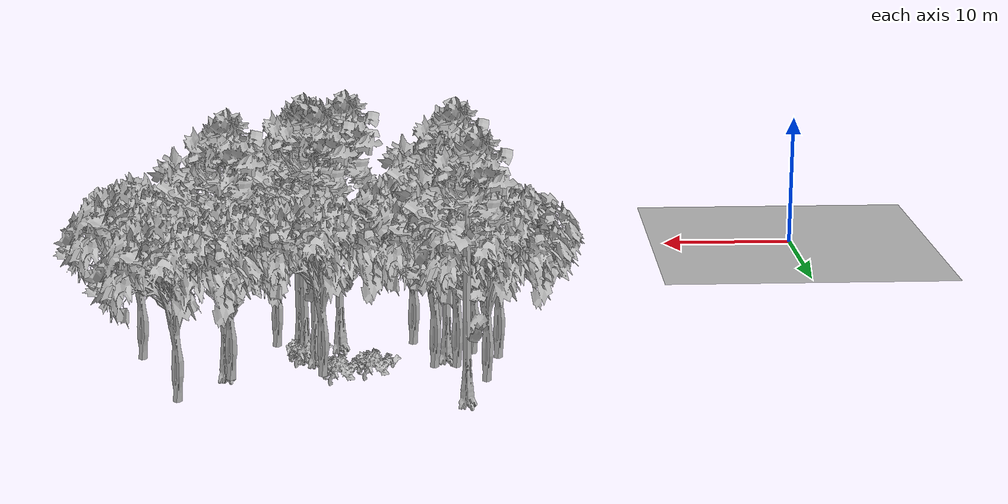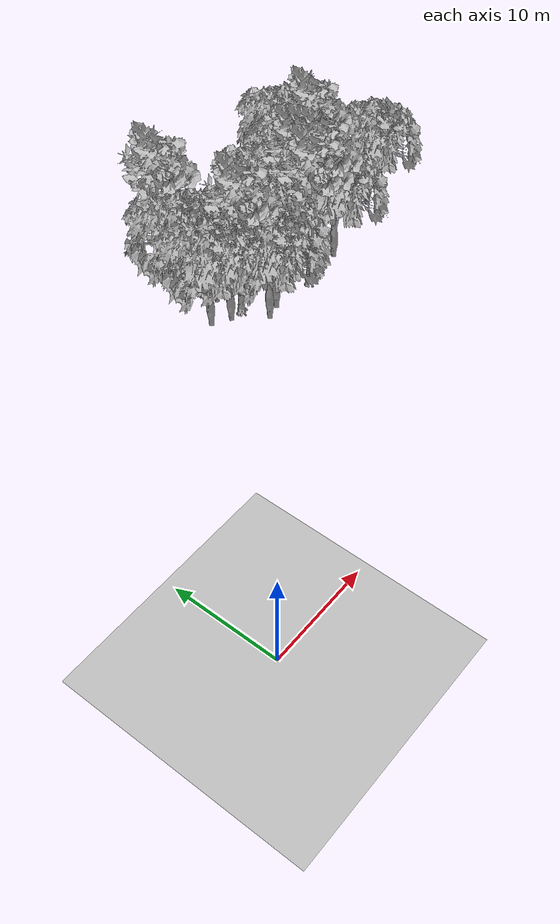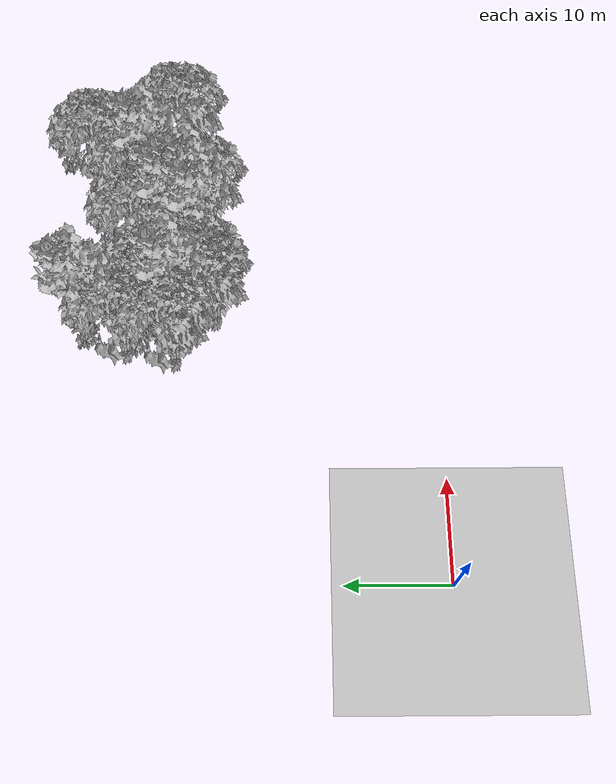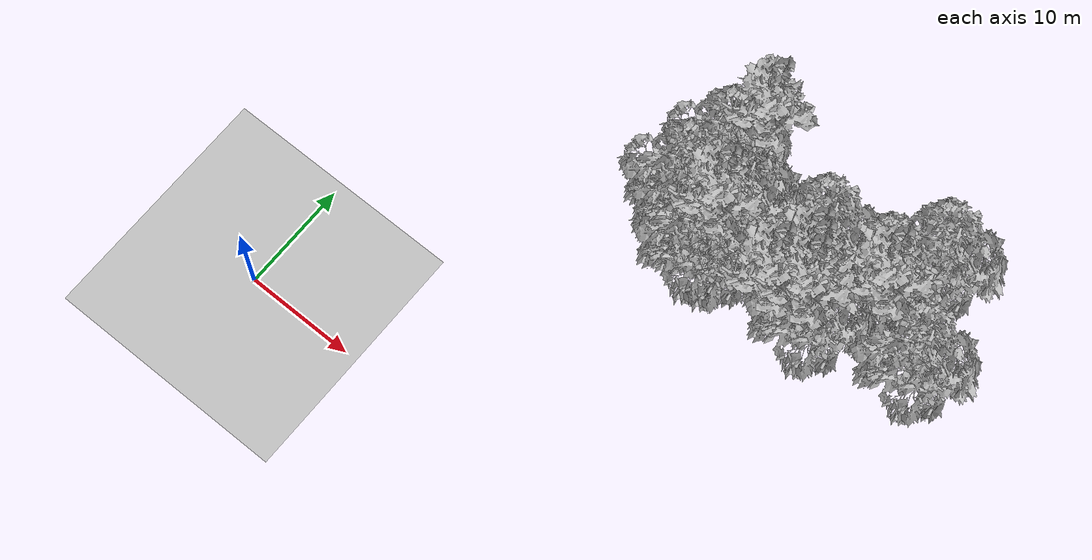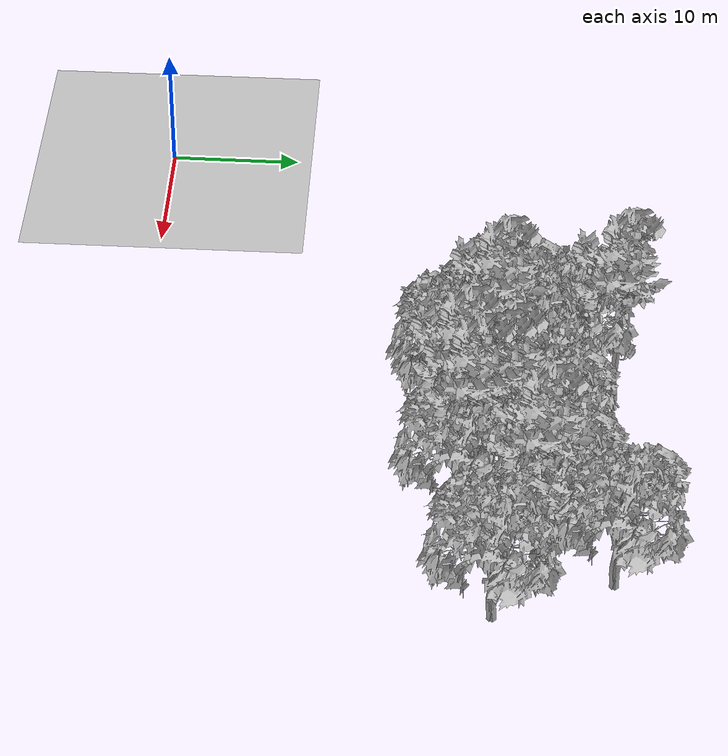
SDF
<sdf version="1.7">
 <world name="default">
  <model name="ground_plane">
   <static>1</static>
   <link name="link">
    <collision name="collision">
     <geometry><plane><normal>0 0 1</normal><size>100 100</size></plane></geometry>
     <surface><contact><ode><min_depth>0.01</min_depth><max_vel>0</max_vel></ode></contact></surface>
    </collision>
    <visual name="grass">
     <cast_shadows>0</cast_shadows>
     <geometry>
      <mesh>
       <scale>0.41000000000000003 0.41000000000000003 0.1</scale>
       <uri>file://grass_plane/meshes/grass_plane.dae</uri>
      </mesh>
     </geometry>
    </visual>
   </link>
  </model>
  <model name="Tree 15">
   <static>1</static>
   <pose>34.30280642389937 23.57383132441612 0 1.57079 -0 0</pose>
   <link name="link">
    <collision name="collision">
     <geometry><mesh><scale>5 5 5</scale><uri>model://tree_9/meshes/tree_9.obj</uri></mesh></geometry>
    </collision>
    <visual name="visual">
     <geometry><mesh><scale>5 5 5</scale><uri>model://tree_9/meshes/tree_9.obj</uri></mesh></geometry>
    </visual>
   </link>
  </model>
  <model name="Tree 87">
   <static>1</static>
   <pose>27.165873374458528 26.056325228191795 0 1.57079 -0 0</pose>
   <link name="link">
    <collision name="collision">
     <geometry><mesh><scale>5 5 5</scale><uri>model://tree_9/meshes/tree_9.obj</uri></mesh></geometry>
    </collision>
    <visual name="visual">
     <geometry><mesh><scale>5 5 5</scale><uri>model://tree_9/meshes/tree_9.obj</uri></mesh></geometry>
    </visual>
   </link>
  </model>
  <model name="Tree 110">
   <static>1</static>
   <pose>36.501326711776244 25.730783659136492 0 1.57079 -0 0</pose>
   <link name="link">
    <collision name="collision">
     <geometry><mesh><scale>5 5 5</scale><uri>model://tree_9/meshes/tree_9.obj</uri></mesh></geometry>
    </collision>
    <visual name="visual">
     <geometry><mesh><scale>5 5 5</scale><uri>model://tree_9/meshes/tree_9.obj</uri></mesh></geometry>
    </visual>
   </link>
  </model>
  <model name="Tree 128">
   <static>1</static>
   <pose>24.50244240428944 31.31182161836395 0 1.57079 -0 0</pose>
   <link name="link">
    <collision name="collision">
     <geometry><mesh><scale>5 5 5</scale><uri>model://tree_2/meshes/tree_2.obj</uri></mesh></geometry>
    </collision>
    <visual name="visual">
     <geometry><mesh><scale>5 5 5</scale><uri>model://tree_2/meshes/tree_2.obj</uri></mesh></geometry>
    </visual>
   </link>
  </model>
  <model name="Tree 131">
   <static>1</static>
   <pose>46.99511599348739 26.019942693859576 0 1.57079 -0 0</pose>
   <link name="link">
    <collision name="collision">
     <geometry><mesh><scale>5 5 5</scale><uri>model://tree_2/meshes/tree_2.obj</uri></mesh></geometry>
    </collision>
    <visual name="visual">
     <geometry><mesh><scale>5 5 5</scale><uri>model://tree_2/meshes/tree_2.obj</uri></mesh></geometry>
    </visual>
   </link>
  </model>
  <model name="Tree 145">
   <static>1</static>
   <pose>40.81949024441167 30.302701460930763 0 1.57079 -0 0</pose>
   <link name="link">
    <collision name="collision">
     <geometry><mesh><scale>5 5 5</scale><uri>model://tree_2/meshes/tree_2.obj</uri></mesh></geometry>
    </collision>
    <visual name="visual">
     <geometry><mesh><scale>5 5 5</scale><uri>model://tree_2/meshes/tree_2.obj</uri></mesh></geometry>
    </visual>
   </link>
  </model>
  <model name="Tree 175">
   <static>1</static>
   <pose>41.39428471906977 29.024817073817715 0 1.57079 -0 0</pose>
   <link name="link">
    <collision name="collision">
     <geometry><mesh><scale>5 5 5</scale><uri>model://tree_9/meshes/tree_9.obj</uri></mesh></geometry>
    </collision>
    <visual name="visual">
     <geometry><mesh><scale>5 5 5</scale><uri>model://tree_9/meshes/tree_9.obj</uri></mesh></geometry>
    </visual>
   </link>
  </model>
  <model name="Tree 183">
   <static>1</static>
   <pose>25.327784345631727 25.826295363840984 0 1.57079 -0 0</pose>
   <link name="link">
    <collision name="collision">
     <geometry><mesh><scale>5 5 5</scale><uri>model://tree_2/meshes/tree_2.obj</uri></mesh></geometry>
    </collision>
    <visual name="visual">
     <geometry><mesh><scale>5 5 5</scale><uri>model://tree_2/meshes/tree_2.obj</uri></mesh></geometry>
    </visual>
   </link>
  </model>
  <model name="Tree 230">
   <static>1</static>
   <pose>27.8329646092875 28.515452601499774 0 1.57079 -0 0</pose>
   <link name="link">
    <collision name="collision">
     <geometry><mesh><scale>5 5 5</scale><uri>model://tree_2/meshes/tree_2.obj</uri></mesh></geometry>
    </collision>
    <visual name="visual">
     <geometry><mesh><scale>5 5 5</scale><uri>model://tree_2/meshes/tree_2.obj</uri></mesh></geometry>
    </visual>
   </link>
  </model>
  <model name="Tree 263">
   <static>1</static>
   <pose>26.395656382741592 28.512815226516736 0 1.57079 -0 0</pose>
   <link name="link">
    <collision name="collision">
     <geometry><mesh><scale>5 5 5</scale><uri>model://tree_2/meshes/tree_2.obj</uri></mesh></geometry>
    </collision>
    <visual name="visual">
     <geometry><mesh><scale>5 5 5</scale><uri>model://tree_2/meshes/tree_2.obj</uri></mesh></geometry>
    </visual>
   </link>
  </model>
  <model name="Tree 267">
   <static>1</static>
   <pose>38.381776165803345 23.83738080337804 0 1.57079 -0 0</pose>
   <link name="link">
    <collision name="collision">
     <geometry><mesh><scale>5 5 5</scale><uri>model://tree_2/meshes/tree_2.obj</uri></mesh></geometry>
    </collision>
    <visual name="visual">
     <geometry><mesh><scale>5 5 5</scale><uri>model://tree_2/meshes/tree_2.obj</uri></mesh></geometry>
    </visual>
   </link>
  </model>
  <model name="Tree 274">
   <static>1</static>
   <pose>43.71598568960326 34.226964899742555 0 1.57079 -0 0</pose>
   <link name="link">
    <collision name="collision">
     <geometry><mesh><scale>5 5 5</scale><uri>model://tree_2/meshes/tree_2.obj</uri></mesh></geometry>
    </collision>
    <visual name="visual">
     <geometry><mesh><scale>5 5 5</scale><uri>model://tree_2/meshes/tree_2.obj</uri></mesh></geometry>
    </visual>
   </link>
  </model>
  <model name="Tree 323">
   <static>1</static>
   <pose>29.27998951058906 23.664999591345875 0 1.57079 -0 0</pose>
   <link name="link">
    <collision name="collision">
     <geometry><mesh><scale>5 5 5</scale><uri>model://tree_2/meshes/tree_2.obj</uri></mesh></geometry>
    </collision>
    <visual name="visual">
     <geometry><mesh><scale>5 5 5</scale><uri>model://tree_2/meshes/tree_2.obj</uri></mesh></geometry>
    </visual>
   </link>
  </model>
  <model name="Tree 349">
   <static>1</static>
   <pose>27.779091031460126 23.221463805002003 0 1.57079 -0 0</pose>
   <link name="link">
    <collision name="collision">
     <geometry><mesh><scale>5 5 5</scale><uri>model://tree_2/meshes/tree_2.obj</uri></mesh></geometry>
    </collision>
    <visual name="visual">
     <geometry><mesh><scale>5 5 5</scale><uri>model://tree_2/meshes/tree_2.obj</uri></mesh></geometry>
    </visual>
   </link>
  </model>
  <model name="Tree 374">
   <static>1</static>
   <pose>36.91762351364902 24.462850623214578 0 1.57079 -0 0</pose>
   <link name="link">
    <collision name="collision">
     <geometry><mesh><scale>5 5 5</scale><uri>model://tree_9/meshes/tree_9.obj</uri></mesh></geometry>
    </collision>
    <visual name="visual">
     <geometry><mesh><scale>5 5 5</scale><uri>model://tree_9/meshes/tree_9.obj</uri></mesh></geometry>
    </visual>
   </link>
  </model>
  <model name="Tree 392">
   <static>1</static>
   <pose>23.650295690786507 26.822166667108178 0 1.57079 -0 0</pose>
   <link name="link">
    <collision name="collision">
     <geometry><mesh><scale>5 5 5</scale><uri>model://tree_2/meshes/tree_2.obj</uri></mesh></geometry>
    </collision>
    <visual name="visual">
     <geometry><mesh><scale>5 5 5</scale><uri>model://tree_2/meshes/tree_2.obj</uri></mesh></geometry>
    </visual>
   </link>
  </model>
  <model name="Tree 435">
   <static>1</static>
   <pose>35.001340384485445 29.877598933731747 0 1.57079 -0 0</pose>
   <link name="link">
    <collision name="collision">
     <geometry><mesh><scale>5 5 5</scale><uri>model://tree_2/meshes/tree_2.obj</uri></mesh></geometry>
    </collision>
    <visual name="visual">
     <geometry><mesh><scale>5 5 5</scale><uri>model://tree_2/meshes/tree_2.obj</uri></mesh></geometry>
    </visual>
   </link>
  </model>
  <model name="Tree 480">
   <static>1</static>
   <pose>35.75851014773279 26.482801307615148 0 1.57079 -0 0</pose>
   <link name="link">
    <collision name="collision">
     <geometry><mesh><scale>5 5 5</scale><uri>model://tree_9/meshes/tree_9.obj</uri></mesh></geometry>
    </collision>
    <visual name="visual">
     <geometry><mesh><scale>5 5 5</scale><uri>model://tree_9/meshes/tree_9.obj</uri></mesh></geometry>
    </visual>
   </link>
  </model>
  <model name="Tree 482">
   <static>1</static>
   <pose>25.920460446594177 34.494148898832364 0 1.57079 -0 0</pose>
   <link name="link">
    <collision name="collision">
     <geometry><mesh><scale>5 5 5</scale><uri>model://tree_9/meshes/tree_9.obj</uri></mesh></geometry>
    </collision>
    <visual name="visual">
     <geometry><mesh><scale>5 5 5</scale><uri>model://tree_9/meshes/tree_9.obj</uri></mesh></geometry>
    </visual>
   </link>
  </model>
  <model name="Bush 6">
   <static>1</static>
   <pose>33.98599147592675 28.952340950320703 0 1.57079 -0 0</pose>
   <link name="link">
    <collision name="collision">
     <geometry><mesh><scale>2 2 2</scale><uri>model://bush_2/meshes/bush_2.obj</uri></mesh></geometry>
    </collision>
    <visual name="visual">
     <geometry><mesh><scale>5 5 5</scale><uri>model://bush_2/meshes/bush_2.obj</uri></mesh></geometry>
    </visual>
   </link>
  </model>
  <model name="Bush 9">
   <static>1</static>
   <pose>31.814443276526063 28.07369496698692 0 1.57079 -0 0</pose>
   <link name="link">
    <collision name="collision">
     <geometry><mesh><scale>2 2 2</scale><uri>model://bush_2/meshes/bush_2.obj</uri></mesh></geometry>
    </collision>
    <visual name="visual">
     <geometry><mesh><scale>5 5 5</scale><uri>model://bush_2/meshes/bush_2.obj</uri></mesh></geometry>
    </visual>
   </link>
  </model>
  <model name="Bush 72">
   <static>1</static>
   <pose>36.40574333527796 25.37341025341236 0 1.57079 -0 0</pose>
   <link name="link">
    <collision name="collision">
     <geometry><mesh><scale>2 2 2</scale><uri>model://bush_2/meshes/bush_2.obj</uri></mesh></geometry>
    </collision>
    <visual name="visual">
     <geometry><mesh><scale>5 5 5</scale><uri>model://bush_2/meshes/bush_2.obj</uri></mesh></geometry>
    </visual>
   </link>
  </model>
 </world>
</sdf>
